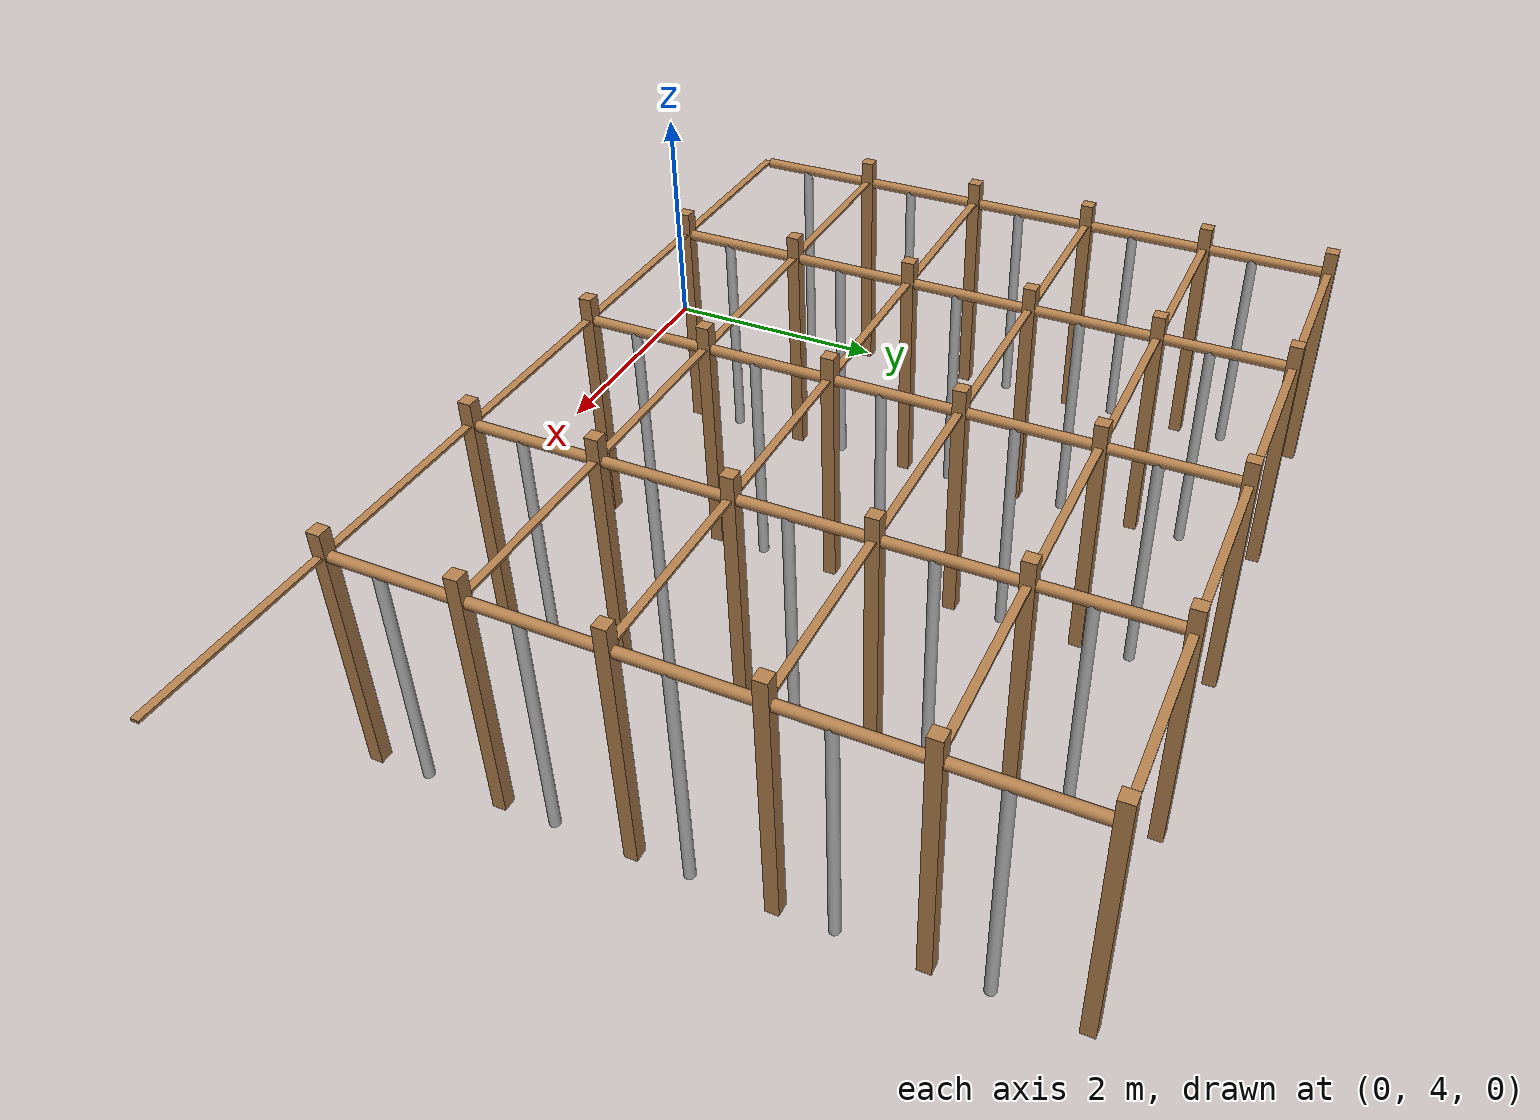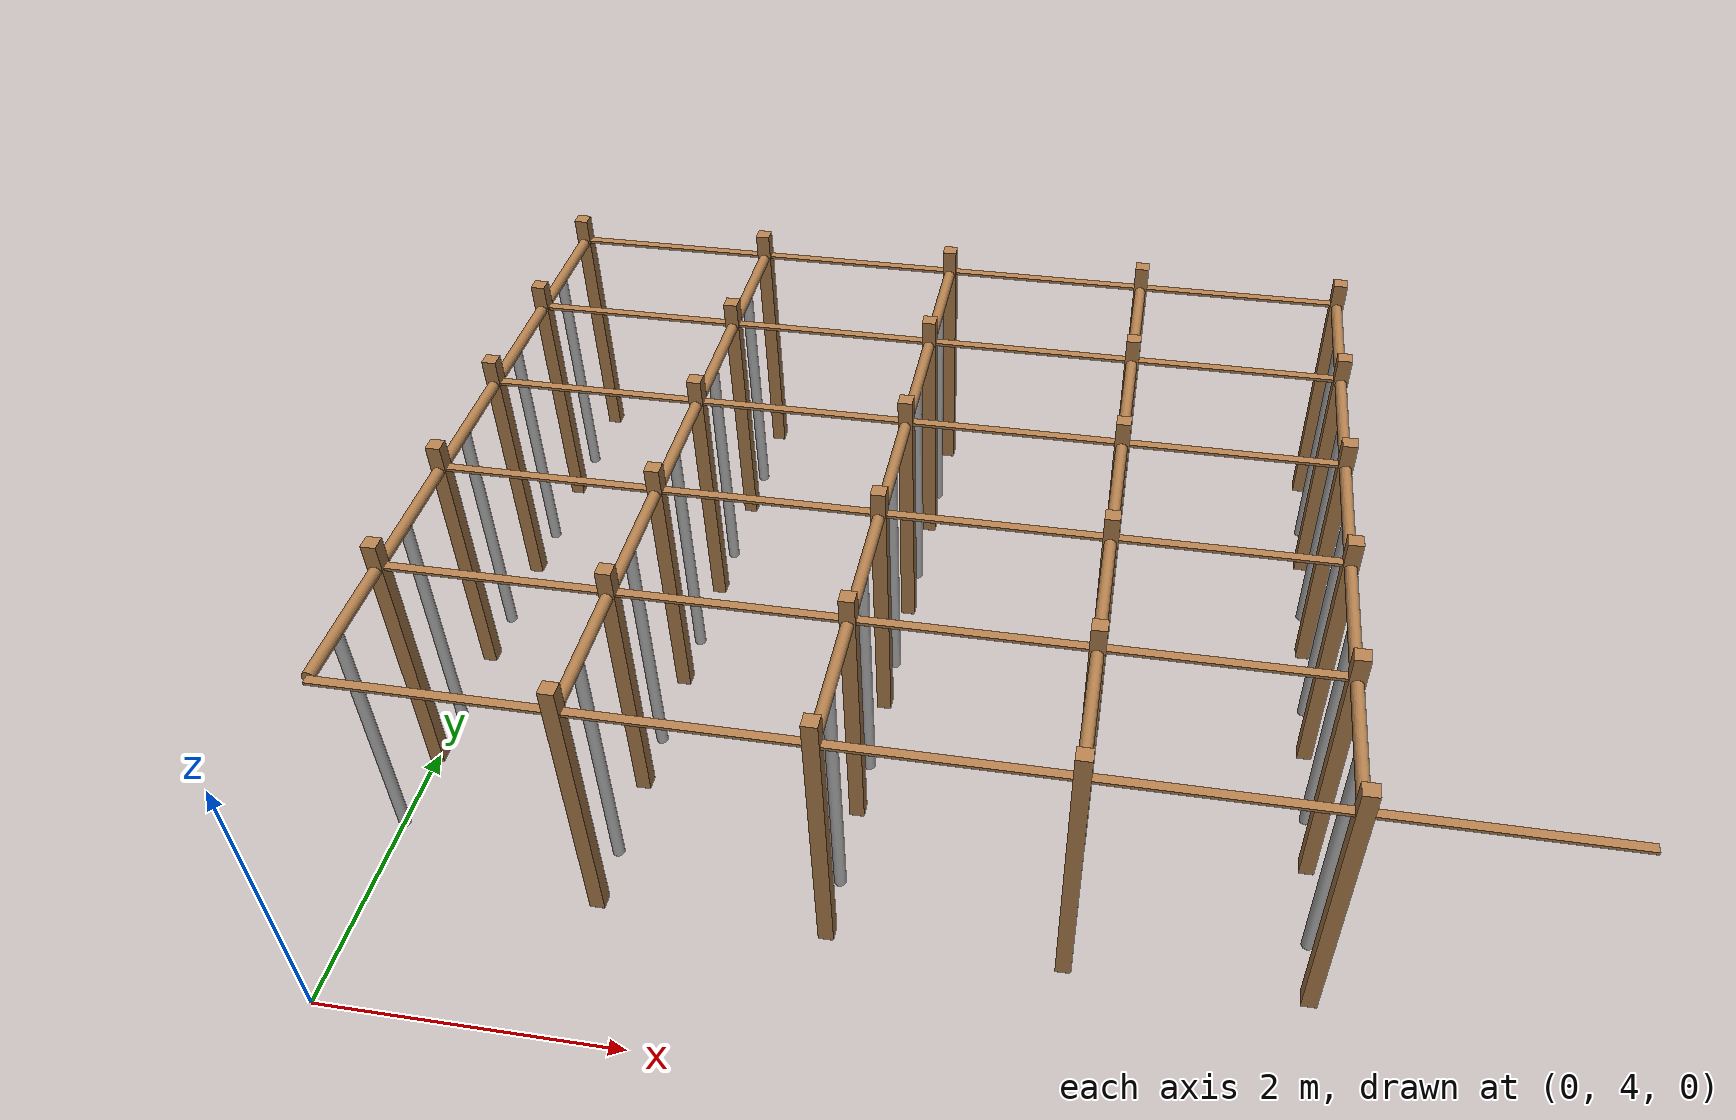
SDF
<sdf version="1.4">
 <model name="pergola">
  <include><name>post_6</name><pose>0.0 6.0 0 0 0 0</pose><uri>model://post</uri></include>
  <include><name>post_7</name><pose>0.0 7.0 0 0 0 0</pose><uri>model://post</uri></include>
  <include><name>post_8</name><pose>0.0 8.0 0 0 0 0</pose><uri>model://post</uri></include>
  <include><name>post_9</name><pose>0.0 9.0 0 0 0 0</pose><uri>model://post</uri></include>
  <include><name>post_10</name><pose>0.0 10.0 0 0 0 0</pose><uri>model://post</uri></include>
  <include><name>post_16</name><pose>1.5 5.0 0 0 0 0</pose><uri>model://post</uri></include>
  <include><name>post_17</name><pose>1.5 6.0 0 0 0 0</pose><uri>model://post</uri></include>
  <include><name>post_18</name><pose>1.5 7.0 0 0 0 0</pose><uri>model://post</uri></include>
  <include><name>post_19</name><pose>1.5 8.0 0 0 0 0</pose><uri>model://post</uri></include>
  <include><name>post_20</name><pose>1.5 9.0 0 0 0 0</pose><uri>model://post</uri></include>
  <include><name>post_21</name><pose>1.5 10.0 0 0 0 0</pose><uri>model://post</uri></include>
  <include><name>post_27</name><pose>3.0 5.0 0 0 0 0</pose><uri>model://post</uri></include>
  <include><name>post_28</name><pose>3.0 6.0 0 0 0 0</pose><uri>model://post</uri></include>
  <include><name>post_29</name><pose>3.0 7.0 0 0 0 0</pose><uri>model://post</uri></include>
  <include><name>post_30</name><pose>3.0 8.0 0 0 0 0</pose><uri>model://post</uri></include>
  <include><name>post_31</name><pose>3.0 9.0 0 0 0 0</pose><uri>model://post</uri></include>
  <include><name>post_32</name><pose>3.0 10.0 0 0 0 0</pose><uri>model://post</uri></include>
  <include><name>post_38</name><pose>4.5 5.0 0 0 0 0</pose><uri>model://post</uri></include>
  <include><name>post_39</name><pose>4.5 6.0 0 0 0 0</pose><uri>model://post</uri></include>
  <include><name>post_40</name><pose>4.5 7.0 0 0 0 0</pose><uri>model://post</uri></include>
  <include><name>post_41</name><pose>4.5 8.0 0 0 0 0</pose><uri>model://post</uri></include>
  <include><name>post_42</name><pose>4.5 9.0 0 0 0 0</pose><uri>model://post</uri></include>
  <include><name>post_43</name><pose>4.5 10.0 0 0 0 0</pose><uri>model://post</uri></include>
  <include><name>post_49</name><pose>6.0 5.0 0 0 0 0</pose><uri>model://post</uri></include>
  <include><name>post_50</name><pose>6.0 6.0 0 0 0 0</pose><uri>model://post</uri></include>
  <include><name>post_51</name><pose>6.0 7.0 0 0 0 0</pose><uri>model://post</uri></include>
  <include><name>post_52</name><pose>6.0 8.0 0 0 0 0</pose><uri>model://post</uri></include>
  <include><name>post_53</name><pose>6.0 9.0 0 0 0 0</pose><uri>model://post</uri></include>
  <include><name>post_54</name><pose>6.0 10.0 0 0 0 0</pose><uri>model://post</uri></include>
  <link name="beam_5">
   <pose>0.75 5.0 1.81 0 0 0</pose>
   <collision name="collision"><geometry><box><size>1.5 0.06 0.02</size></box></geometry></collision>
   <visual name="visual">
    <geometry><box><size>1.5 0.06 0.02</size></box></geometry>
    <material><script><name>Gazebo/Wood</name></script></material>
   </visual>
   <inertial>
    <mass>5</mass>
    <inertia>
     <ixx>0.0016666666666666668</ixx>
     <ixy>0.0</ixy>
     <ixz>0.0</ixz>
     <iyy>0.9390000000000001</iyy>
     <iyz>0.0</iyz>
     <izz>0.9376666666666665</izz>
    </inertia>
   </inertial>
  </link>
  <link name="beam_6">
   <pose>0.75 6.0 1.81 0 0 0</pose>
   <collision name="collision"><geometry><box><size>1.5 0.06 0.02</size></box></geometry></collision>
   <visual name="visual">
    <geometry><box><size>1.5 0.06 0.02</size></box></geometry>
    <material><script><name>Gazebo/Wood</name></script></material>
   </visual>
   <inertial>
    <mass>5</mass>
    <inertia>
     <ixx>0.0016666666666666668</ixx>
     <ixy>0.0</ixy>
     <ixz>0.0</ixz>
     <iyy>0.9390000000000001</iyy>
     <iyz>0.0</iyz>
     <izz>0.9376666666666665</izz>
    </inertia>
   </inertial>
  </link>
  <link name="beam_7">
   <pose>0.75 7.0 1.81 0 0 0</pose>
   <collision name="collision"><geometry><box><size>1.5 0.06 0.02</size></box></geometry></collision>
   <visual name="visual">
    <geometry><box><size>1.5 0.06 0.02</size></box></geometry>
    <material><script><name>Gazebo/Wood</name></script></material>
   </visual>
   <inertial>
    <mass>5</mass>
    <inertia>
     <ixx>0.0016666666666666668</ixx>
     <ixy>0.0</ixy>
     <ixz>0.0</ixz>
     <iyy>0.9390000000000001</iyy>
     <iyz>0.0</iyz>
     <izz>0.9376666666666665</izz>
    </inertia>
   </inertial>
  </link>
  <link name="beam_8">
   <pose>0.75 8.0 1.81 0 0 0</pose>
   <collision name="collision"><geometry><box><size>1.5 0.06 0.02</size></box></geometry></collision>
   <visual name="visual">
    <geometry><box><size>1.5 0.06 0.02</size></box></geometry>
    <material><script><name>Gazebo/Wood</name></script></material>
   </visual>
   <inertial>
    <mass>5</mass>
    <inertia>
     <ixx>0.0016666666666666668</ixx>
     <ixy>0.0</ixy>
     <ixz>0.0</ixz>
     <iyy>0.9390000000000001</iyy>
     <iyz>0.0</iyz>
     <izz>0.9376666666666665</izz>
    </inertia>
   </inertial>
  </link>
  <link name="beam_9">
   <pose>0.75 9.0 1.81 0 0 0</pose>
   <collision name="collision"><geometry><box><size>1.5 0.06 0.02</size></box></geometry></collision>
   <visual name="visual">
    <geometry><box><size>1.5 0.06 0.02</size></box></geometry>
    <material><script><name>Gazebo/Wood</name></script></material>
   </visual>
   <inertial>
    <mass>5</mass>
    <inertia>
     <ixx>0.0016666666666666668</ixx>
     <ixy>0.0</ixy>
     <ixz>0.0</ixz>
     <iyy>0.9390000000000001</iyy>
     <iyz>0.0</iyz>
     <izz>0.9376666666666665</izz>
    </inertia>
   </inertial>
  </link>
  <link name="beam_10">
   <pose>0.75 10.0 1.81 0 0 0</pose>
   <collision name="collision"><geometry><box><size>1.5 0.06 0.02</size></box></geometry></collision>
   <visual name="visual">
    <geometry><box><size>1.5 0.06 0.02</size></box></geometry>
    <material><script><name>Gazebo/Wood</name></script></material>
   </visual>
   <inertial>
    <mass>5</mass>
    <inertia>
     <ixx>0.0016666666666666668</ixx>
     <ixy>0.0</ixy>
     <ixz>0.0</ixz>
     <iyy>0.9390000000000001</iyy>
     <iyz>0.0</iyz>
     <izz>0.9376666666666665</izz>
    </inertia>
   </inertial>
  </link>
  <link name="beam_16">
   <pose>2.25 5.0 1.81 0 0 0</pose>
   <collision name="collision"><geometry><box><size>1.5 0.06 0.02</size></box></geometry></collision>
   <visual name="visual">
    <geometry><box><size>1.5 0.06 0.02</size></box></geometry>
    <material><script><name>Gazebo/Wood</name></script></material>
   </visual>
   <inertial>
    <mass>5</mass>
    <inertia>
     <ixx>0.0016666666666666668</ixx>
     <ixy>0.0</ixy>
     <ixz>0.0</ixz>
     <iyy>0.9390000000000001</iyy>
     <iyz>0.0</iyz>
     <izz>0.9376666666666665</izz>
    </inertia>
   </inertial>
  </link>
  <link name="beam_17">
   <pose>2.25 6.0 1.81 0 0 0</pose>
   <collision name="collision"><geometry><box><size>1.5 0.06 0.02</size></box></geometry></collision>
   <visual name="visual">
    <geometry><box><size>1.5 0.06 0.02</size></box></geometry>
    <material><script><name>Gazebo/Wood</name></script></material>
   </visual>
   <inertial>
    <mass>5</mass>
    <inertia>
     <ixx>0.0016666666666666668</ixx>
     <ixy>0.0</ixy>
     <ixz>0.0</ixz>
     <iyy>0.9390000000000001</iyy>
     <iyz>0.0</iyz>
     <izz>0.9376666666666665</izz>
    </inertia>
   </inertial>
  </link>
  <link name="beam_18">
   <pose>2.25 7.0 1.81 0 0 0</pose>
   <collision name="collision"><geometry><box><size>1.5 0.06 0.02</size></box></geometry></collision>
   <visual name="visual">
    <geometry><box><size>1.5 0.06 0.02</size></box></geometry>
    <material><script><name>Gazebo/Wood</name></script></material>
   </visual>
   <inertial>
    <mass>5</mass>
    <inertia>
     <ixx>0.0016666666666666668</ixx>
     <ixy>0.0</ixy>
     <ixz>0.0</ixz>
     <iyy>0.9390000000000001</iyy>
     <iyz>0.0</iyz>
     <izz>0.9376666666666665</izz>
    </inertia>
   </inertial>
  </link>
  <link name="beam_19">
   <pose>2.25 8.0 1.81 0 0 0</pose>
   <collision name="collision"><geometry><box><size>1.5 0.06 0.02</size></box></geometry></collision>
   <visual name="visual">
    <geometry><box><size>1.5 0.06 0.02</size></box></geometry>
    <material><script><name>Gazebo/Wood</name></script></material>
   </visual>
   <inertial>
    <mass>5</mass>
    <inertia>
     <ixx>0.0016666666666666668</ixx>
     <ixy>0.0</ixy>
     <ixz>0.0</ixz>
     <iyy>0.9390000000000001</iyy>
     <iyz>0.0</iyz>
     <izz>0.9376666666666665</izz>
    </inertia>
   </inertial>
  </link>
  <link name="beam_20">
   <pose>2.25 9.0 1.81 0 0 0</pose>
   <collision name="collision"><geometry><box><size>1.5 0.06 0.02</size></box></geometry></collision>
   <visual name="visual">
    <geometry><box><size>1.5 0.06 0.02</size></box></geometry>
    <material><script><name>Gazebo/Wood</name></script></material>
   </visual>
   <inertial>
    <mass>5</mass>
    <inertia>
     <ixx>0.0016666666666666668</ixx>
     <ixy>0.0</ixy>
     <ixz>0.0</ixz>
     <iyy>0.9390000000000001</iyy>
     <iyz>0.0</iyz>
     <izz>0.9376666666666665</izz>
    </inertia>
   </inertial>
  </link>
  <link name="beam_21">
   <pose>2.25 10.0 1.81 0 0 0</pose>
   <collision name="collision"><geometry><box><size>1.5 0.06 0.02</size></box></geometry></collision>
   <visual name="visual">
    <geometry><box><size>1.5 0.06 0.02</size></box></geometry>
    <material><script><name>Gazebo/Wood</name></script></material>
   </visual>
   <inertial>
    <mass>5</mass>
    <inertia>
     <ixx>0.0016666666666666668</ixx>
     <ixy>0.0</ixy>
     <ixz>0.0</ixz>
     <iyy>0.9390000000000001</iyy>
     <iyz>0.0</iyz>
     <izz>0.9376666666666665</izz>
    </inertia>
   </inertial>
  </link>
  <link name="beam_27">
   <pose>3.75 5.0 1.81 0 0 0</pose>
   <collision name="collision"><geometry><box><size>1.5 0.06 0.02</size></box></geometry></collision>
   <visual name="visual">
    <geometry><box><size>1.5 0.06 0.02</size></box></geometry>
    <material><script><name>Gazebo/Wood</name></script></material>
   </visual>
   <inertial>
    <mass>5</mass>
    <inertia>
     <ixx>0.0016666666666666668</ixx>
     <ixy>0.0</ixy>
     <ixz>0.0</ixz>
     <iyy>0.9390000000000001</iyy>
     <iyz>0.0</iyz>
     <izz>0.9376666666666665</izz>
    </inertia>
   </inertial>
  </link>
  <link name="beam_28">
   <pose>3.75 6.0 1.81 0 0 0</pose>
   <collision name="collision"><geometry><box><size>1.5 0.06 0.02</size></box></geometry></collision>
   <visual name="visual">
    <geometry><box><size>1.5 0.06 0.02</size></box></geometry>
    <material><script><name>Gazebo/Wood</name></script></material>
   </visual>
   <inertial>
    <mass>5</mass>
    <inertia>
     <ixx>0.0016666666666666668</ixx>
     <ixy>0.0</ixy>
     <ixz>0.0</ixz>
     <iyy>0.9390000000000001</iyy>
     <iyz>0.0</iyz>
     <izz>0.9376666666666665</izz>
    </inertia>
   </inertial>
  </link>
  <link name="beam_29">
   <pose>3.75 7.0 1.81 0 0 0</pose>
   <collision name="collision"><geometry><box><size>1.5 0.06 0.02</size></box></geometry></collision>
   <visual name="visual">
    <geometry><box><size>1.5 0.06 0.02</size></box></geometry>
    <material><script><name>Gazebo/Wood</name></script></material>
   </visual>
   <inertial>
    <mass>5</mass>
    <inertia>
     <ixx>0.0016666666666666668</ixx>
     <ixy>0.0</ixy>
     <ixz>0.0</ixz>
     <iyy>0.9390000000000001</iyy>
     <iyz>0.0</iyz>
     <izz>0.9376666666666665</izz>
    </inertia>
   </inertial>
  </link>
  <link name="beam_30">
   <pose>3.75 8.0 1.81 0 0 0</pose>
   <collision name="collision"><geometry><box><size>1.5 0.06 0.02</size></box></geometry></collision>
   <visual name="visual">
    <geometry><box><size>1.5 0.06 0.02</size></box></geometry>
    <material><script><name>Gazebo/Wood</name></script></material>
   </visual>
   <inertial>
    <mass>5</mass>
    <inertia>
     <ixx>0.0016666666666666668</ixx>
     <ixy>0.0</ixy>
     <ixz>0.0</ixz>
     <iyy>0.9390000000000001</iyy>
     <iyz>0.0</iyz>
     <izz>0.9376666666666665</izz>
    </inertia>
   </inertial>
  </link>
  <link name="beam_31">
   <pose>3.75 9.0 1.81 0 0 0</pose>
   <collision name="collision"><geometry><box><size>1.5 0.06 0.02</size></box></geometry></collision>
   <visual name="visual">
    <geometry><box><size>1.5 0.06 0.02</size></box></geometry>
    <material><script><name>Gazebo/Wood</name></script></material>
   </visual>
   <inertial>
    <mass>5</mass>
    <inertia>
     <ixx>0.0016666666666666668</ixx>
     <ixy>0.0</ixy>
     <ixz>0.0</ixz>
     <iyy>0.9390000000000001</iyy>
     <iyz>0.0</iyz>
     <izz>0.9376666666666665</izz>
    </inertia>
   </inertial>
  </link>
  <link name="beam_32">
   <pose>3.75 10.0 1.81 0 0 0</pose>
   <collision name="collision"><geometry><box><size>1.5 0.06 0.02</size></box></geometry></collision>
   <visual name="visual">
    <geometry><box><size>1.5 0.06 0.02</size></box></geometry>
    <material><script><name>Gazebo/Wood</name></script></material>
   </visual>
   <inertial>
    <mass>5</mass>
    <inertia>
     <ixx>0.0016666666666666668</ixx>
     <ixy>0.0</ixy>
     <ixz>0.0</ixz>
     <iyy>0.9390000000000001</iyy>
     <iyz>0.0</iyz>
     <izz>0.9376666666666665</izz>
    </inertia>
   </inertial>
  </link>
  <link name="beam_38">
   <pose>5.25 5.0 1.81 0 0 0</pose>
   <collision name="collision"><geometry><box><size>1.5 0.06 0.02</size></box></geometry></collision>
   <visual name="visual">
    <geometry><box><size>1.5 0.06 0.02</size></box></geometry>
    <material><script><name>Gazebo/Wood</name></script></material>
   </visual>
   <inertial>
    <mass>5</mass>
    <inertia>
     <ixx>0.0016666666666666668</ixx>
     <ixy>0.0</ixy>
     <ixz>0.0</ixz>
     <iyy>0.9390000000000001</iyy>
     <iyz>0.0</iyz>
     <izz>0.9376666666666665</izz>
    </inertia>
   </inertial>
  </link>
  <link name="beam_39">
   <pose>5.25 6.0 1.81 0 0 0</pose>
   <collision name="collision"><geometry><box><size>1.5 0.06 0.02</size></box></geometry></collision>
   <visual name="visual">
    <geometry><box><size>1.5 0.06 0.02</size></box></geometry>
    <material><script><name>Gazebo/Wood</name></script></material>
   </visual>
   <inertial>
    <mass>5</mass>
    <inertia>
     <ixx>0.0016666666666666668</ixx>
     <ixy>0.0</ixy>
     <ixz>0.0</ixz>
     <iyy>0.9390000000000001</iyy>
     <iyz>0.0</iyz>
     <izz>0.9376666666666665</izz>
    </inertia>
   </inertial>
  </link>
  <link name="beam_40">
   <pose>5.25 7.0 1.81 0 0 0</pose>
   <collision name="collision"><geometry><box><size>1.5 0.06 0.02</size></box></geometry></collision>
   <visual name="visual">
    <geometry><box><size>1.5 0.06 0.02</size></box></geometry>
    <material><script><name>Gazebo/Wood</name></script></material>
   </visual>
   <inertial>
    <mass>5</mass>
    <inertia>
     <ixx>0.0016666666666666668</ixx>
     <ixy>0.0</ixy>
     <ixz>0.0</ixz>
     <iyy>0.9390000000000001</iyy>
     <iyz>0.0</iyz>
     <izz>0.9376666666666665</izz>
    </inertia>
   </inertial>
  </link>
  <link name="beam_41">
   <pose>5.25 8.0 1.81 0 0 0</pose>
   <collision name="collision"><geometry><box><size>1.5 0.06 0.02</size></box></geometry></collision>
   <visual name="visual">
    <geometry><box><size>1.5 0.06 0.02</size></box></geometry>
    <material><script><name>Gazebo/Wood</name></script></material>
   </visual>
   <inertial>
    <mass>5</mass>
    <inertia>
     <ixx>0.0016666666666666668</ixx>
     <ixy>0.0</ixy>
     <ixz>0.0</ixz>
     <iyy>0.9390000000000001</iyy>
     <iyz>0.0</iyz>
     <izz>0.9376666666666665</izz>
    </inertia>
   </inertial>
  </link>
  <link name="beam_42">
   <pose>5.25 9.0 1.81 0 0 0</pose>
   <collision name="collision"><geometry><box><size>1.5 0.06 0.02</size></box></geometry></collision>
   <visual name="visual">
    <geometry><box><size>1.5 0.06 0.02</size></box></geometry>
    <material><script><name>Gazebo/Wood</name></script></material>
   </visual>
   <inertial>
    <mass>5</mass>
    <inertia>
     <ixx>0.0016666666666666668</ixx>
     <ixy>0.0</ixy>
     <ixz>0.0</ixz>
     <iyy>0.9390000000000001</iyy>
     <iyz>0.0</iyz>
     <izz>0.9376666666666665</izz>
    </inertia>
   </inertial>
  </link>
  <link name="beam_43">
   <pose>5.25 10.0 1.81 0 0 0</pose>
   <collision name="collision"><geometry><box><size>1.5 0.06 0.02</size></box></geometry></collision>
   <visual name="visual">
    <geometry><box><size>1.5 0.06 0.02</size></box></geometry>
    <material><script><name>Gazebo/Wood</name></script></material>
   </visual>
   <inertial>
    <mass>5</mass>
    <inertia>
     <ixx>0.0016666666666666668</ixx>
     <ixy>0.0</ixy>
     <ixz>0.0</ixz>
     <iyy>0.9390000000000001</iyy>
     <iyz>0.0</iyz>
     <izz>0.9376666666666665</izz>
    </inertia>
   </inertial>
  </link>
  <link name="beam_49">
   <pose>6.75 5.0 1.81 0 0 0</pose>
   <collision name="collision"><geometry><box><size>1.5 0.06 0.02</size></box></geometry></collision>
   <visual name="visual">
    <geometry><box><size>1.5 0.06 0.02</size></box></geometry>
    <material><script><name>Gazebo/Wood</name></script></material>
   </visual>
   <inertial>
    <mass>5</mass>
    <inertia>
     <ixx>0.0016666666666666668</ixx>
     <ixy>0.0</ixy>
     <ixz>0.0</ixz>
     <iyy>0.9390000000000001</iyy>
     <iyz>0.0</iyz>
     <izz>0.9376666666666665</izz>
    </inertia>
   </inertial>
  </link>
  <include><name>tree_5</name><pose>0.0 5.4 0 0 0 0</pose><uri>model://tree_trunk</uri></include>
  <include><name>tree_6</name><pose>0.0 6.4 0 0 0 0</pose><uri>model://tree_trunk</uri></include>
  <include><name>tree_7</name><pose>0.0 7.4 0 0 0 0</pose><uri>model://tree_trunk</uri></include>
  <include><name>tree_8</name><pose>0.0 8.4 0 0 0 0</pose><uri>model://tree_trunk</uri></include>
  <include><name>tree_9</name><pose>0.0 9.4 0 0 0 0</pose><uri>model://tree_trunk</uri></include>
  <include><name>tree_15</name><pose>1.5 5.4 0 0 0 0</pose><uri>model://tree_trunk</uri></include>
  <include><name>tree_16</name><pose>1.5 6.4 0 0 0 0</pose><uri>model://tree_trunk</uri></include>
  <include><name>tree_17</name><pose>1.5 7.4 0 0 0 0</pose><uri>model://tree_trunk</uri></include>
  <include><name>tree_18</name><pose>1.5 8.4 0 0 0 0</pose><uri>model://tree_trunk</uri></include>
  <include><name>tree_19</name><pose>1.5 9.4 0 0 0 0</pose><uri>model://tree_trunk</uri></include>
  <include><name>tree_25</name><pose>3.0 5.4 0 0 0 0</pose><uri>model://tree_trunk</uri></include>
  <include><name>tree_26</name><pose>3.0 6.4 0 0 0 0</pose><uri>model://tree_trunk</uri></include>
  <include><name>tree_27</name><pose>3.0 7.4 0 0 0 0</pose><uri>model://tree_trunk</uri></include>
  <include><name>tree_28</name><pose>3.0 8.4 0 0 0 0</pose><uri>model://tree_trunk</uri></include>
  <include><name>tree_29</name><pose>3.0 9.4 0 0 0 0</pose><uri>model://tree_trunk</uri></include>
  <include><name>tree_35</name><pose>4.5 5.4 0 0 0 0</pose><uri>model://tree_trunk</uri></include>
  <include><name>tree_36</name><pose>4.5 6.4 0 0 0 0</pose><uri>model://tree_trunk</uri></include>
  <include><name>tree_37</name><pose>4.5 7.4 0 0 0 0</pose><uri>model://tree_trunk</uri></include>
  <include><name>tree_38</name><pose>4.5 8.4 0 0 0 0</pose><uri>model://tree_trunk</uri></include>
  <include><name>tree_39</name><pose>4.5 9.4 0 0 0 0</pose><uri>model://tree_trunk</uri></include>
  <include><name>tree_45</name><pose>6.0 5.4 0 0 0 0</pose><uri>model://tree_trunk</uri></include>
  <include><name>tree_46</name><pose>6.0 6.4 0 0 0 0</pose><uri>model://tree_trunk</uri></include>
  <include><name>tree_47</name><pose>6.0 7.4 0 0 0 0</pose><uri>model://tree_trunk</uri></include>
  <include><name>tree_48</name><pose>6.0 8.4 0 0 0 0</pose><uri>model://tree_trunk</uri></include>
  <include><name>tree_49</name><pose>6.0 9.4 0 0 0 0</pose><uri>model://tree_trunk</uri></include>
  <link name="baseBranch_5">
   <pose>0.0 5.5 1.8 1.5707963267948966 0 0</pose>
   <collision name="collision">
    <geometry><cylinder><radius>0.04</radius><length>0.94</length></cylinder></geometry>
   </collision>
   <visual name="visual">
    <geometry><cylinder><radius>0.04</radius><length>0.94</length></cylinder></geometry>
    <material><script><name>Gazebo/WoodFloor</name></script></material>
   </visual>
   <inertial>
    <mass>10</mass>
    <inertia>
     <ixx>0.7403333333333334</ixx>
     <ixy>0.0</ixy>
     <ixz>0.0</ixz>
     <iyy>0.7403333333333334</iyy>
     <iyz>0.0</iyz>
     <izz>0.008</izz>
    </inertia>
   </inertial>
  </link>
  <link name="baseBranch_6">
   <pose>0.0 6.5 1.8 1.5707963267948966 0 0</pose>
   <collision name="collision">
    <geometry><cylinder><radius>0.04</radius><length>0.94</length></cylinder></geometry>
   </collision>
   <visual name="visual">
    <geometry><cylinder><radius>0.04</radius><length>0.94</length></cylinder></geometry>
    <material><script><name>Gazebo/WoodFloor</name></script></material>
   </visual>
   <inertial>
    <mass>10</mass>
    <inertia>
     <ixx>0.7403333333333334</ixx>
     <ixy>0.0</ixy>
     <ixz>0.0</ixz>
     <iyy>0.7403333333333334</iyy>
     <iyz>0.0</iyz>
     <izz>0.008</izz>
    </inertia>
   </inertial>
  </link>
  <link name="baseBranch_7">
   <pose>0.0 7.5 1.8 1.5707963267948966 0 0</pose>
   <collision name="collision">
    <geometry><cylinder><radius>0.04</radius><length>0.94</length></cylinder></geometry>
   </collision>
   <visual name="visual">
    <geometry><cylinder><radius>0.04</radius><length>0.94</length></cylinder></geometry>
    <material><script><name>Gazebo/WoodFloor</name></script></material>
   </visual>
   <inertial>
    <mass>10</mass>
    <inertia>
     <ixx>0.7403333333333334</ixx>
     <ixy>0.0</ixy>
     <ixz>0.0</ixz>
     <iyy>0.7403333333333334</iyy>
     <iyz>0.0</iyz>
     <izz>0.008</izz>
    </inertia>
   </inertial>
  </link>
  <link name="baseBranch_8">
   <pose>0.0 8.5 1.8 1.5707963267948966 0 0</pose>
   <collision name="collision">
    <geometry><cylinder><radius>0.04</radius><length>0.94</length></cylinder></geometry>
   </collision>
   <visual name="visual">
    <geometry><cylinder><radius>0.04</radius><length>0.94</length></cylinder></geometry>
    <material><script><name>Gazebo/WoodFloor</name></script></material>
   </visual>
   <inertial>
    <mass>10</mass>
    <inertia>
     <ixx>0.7403333333333334</ixx>
     <ixy>0.0</ixy>
     <ixz>0.0</ixz>
     <iyy>0.7403333333333334</iyy>
     <iyz>0.0</iyz>
     <izz>0.008</izz>
    </inertia>
   </inertial>
  </link>
  <link name="baseBranch_9">
   <pose>0.0 9.5 1.8 1.5707963267948966 0 0</pose>
   <collision name="collision">
    <geometry><cylinder><radius>0.04</radius><length>0.94</length></cylinder></geometry>
   </collision>
   <visual name="visual">
    <geometry><cylinder><radius>0.04</radius><length>0.94</length></cylinder></geometry>
    <material><script><name>Gazebo/WoodFloor</name></script></material>
   </visual>
   <inertial>
    <mass>10</mass>
    <inertia>
     <ixx>0.7403333333333334</ixx>
     <ixy>0.0</ixy>
     <ixz>0.0</ixz>
     <iyy>0.7403333333333334</iyy>
     <iyz>0.0</iyz>
     <izz>0.008</izz>
    </inertia>
   </inertial>
  </link>
  <link name="baseBranch_15">
   <pose>1.5 5.5 1.8 1.5707963267948966 0 0</pose>
   <collision name="collision">
    <geometry><cylinder><radius>0.04</radius><length>0.94</length></cylinder></geometry>
   </collision>
   <visual name="visual">
    <geometry><cylinder><radius>0.04</radius><length>0.94</length></cylinder></geometry>
    <material><script><name>Gazebo/WoodFloor</name></script></material>
   </visual>
   <inertial>
    <mass>10</mass>
    <inertia>
     <ixx>0.7403333333333334</ixx>
     <ixy>0.0</ixy>
     <ixz>0.0</ixz>
     <iyy>0.7403333333333334</iyy>
     <iyz>0.0</iyz>
     <izz>0.008</izz>
    </inertia>
   </inertial>
  </link>
  <link name="baseBranch_16">
   <pose>1.5 6.5 1.8 1.5707963267948966 0 0</pose>
   <collision name="collision">
    <geometry><cylinder><radius>0.04</radius><length>0.94</length></cylinder></geometry>
   </collision>
   <visual name="visual">
    <geometry><cylinder><radius>0.04</radius><length>0.94</length></cylinder></geometry>
    <material><script><name>Gazebo/WoodFloor</name></script></material>
   </visual>
   <inertial>
    <mass>10</mass>
    <inertia>
     <ixx>0.7403333333333334</ixx>
     <ixy>0.0</ixy>
     <ixz>0.0</ixz>
     <iyy>0.7403333333333334</iyy>
     <iyz>0.0</iyz>
     <izz>0.008</izz>
    </inertia>
   </inertial>
  </link>
  <link name="baseBranch_17">
   <pose>1.5 7.5 1.8 1.5707963267948966 0 0</pose>
   <collision name="collision">
    <geometry><cylinder><radius>0.04</radius><length>0.94</length></cylinder></geometry>
   </collision>
   <visual name="visual">
    <geometry><cylinder><radius>0.04</radius><length>0.94</length></cylinder></geometry>
    <material><script><name>Gazebo/WoodFloor</name></script></material>
   </visual>
   <inertial>
    <mass>10</mass>
    <inertia>
     <ixx>0.7403333333333334</ixx>
     <ixy>0.0</ixy>
     <ixz>0.0</ixz>
     <iyy>0.7403333333333334</iyy>
     <iyz>0.0</iyz>
     <izz>0.008</izz>
    </inertia>
   </inertial>
  </link>
  <link name="baseBranch_18">
   <pose>1.5 8.5 1.8 1.5707963267948966 0 0</pose>
   <collision name="collision">
    <geometry><cylinder><radius>0.04</radius><length>0.94</length></cylinder></geometry>
   </collision>
   <visual name="visual">
    <geometry><cylinder><radius>0.04</radius><length>0.94</length></cylinder></geometry>
    <material><script><name>Gazebo/WoodFloor</name></script></material>
   </visual>
   <inertial>
    <mass>10</mass>
    <inertia>
     <ixx>0.7403333333333334</ixx>
     <ixy>0.0</ixy>
     <ixz>0.0</ixz>
     <iyy>0.7403333333333334</iyy>
     <iyz>0.0</iyz>
     <izz>0.008</izz>
    </inertia>
   </inertial>
  </link>
  <link name="baseBranch_19">
   <pose>1.5 9.5 1.8 1.5707963267948966 0 0</pose>
   <collision name="collision">
    <geometry><cylinder><radius>0.04</radius><length>0.94</length></cylinder></geometry>
   </collision>
   <visual name="visual">
    <geometry><cylinder><radius>0.04</radius><length>0.94</length></cylinder></geometry>
    <material><script><name>Gazebo/WoodFloor</name></script></material>
   </visual>
   <inertial>
    <mass>10</mass>
    <inertia>
     <ixx>0.7403333333333334</ixx>
     <ixy>0.0</ixy>
     <ixz>0.0</ixz>
     <iyy>0.7403333333333334</iyy>
     <iyz>0.0</iyz>
     <izz>0.008</izz>
    </inertia>
   </inertial>
  </link>
  <link name="baseBranch_25">
   <pose>3.0 5.5 1.8 1.5707963267948966 0 0</pose>
   <collision name="collision">
    <geometry><cylinder><radius>0.04</radius><length>0.94</length></cylinder></geometry>
   </collision>
   <visual name="visual">
    <geometry><cylinder><radius>0.04</radius><length>0.94</length></cylinder></geometry>
    <material><script><name>Gazebo/WoodFloor</name></script></material>
   </visual>
   <inertial>
    <mass>10</mass>
    <inertia>
     <ixx>0.7403333333333334</ixx>
     <ixy>0.0</ixy>
     <ixz>0.0</ixz>
     <iyy>0.7403333333333334</iyy>
     <iyz>0.0</iyz>
     <izz>0.008</izz>
    </inertia>
   </inertial>
  </link>
  <link name="baseBranch_26">
   <pose>3.0 6.5 1.8 1.5707963267948966 0 0</pose>
   <collision name="collision">
    <geometry><cylinder><radius>0.04</radius><length>0.94</length></cylinder></geometry>
   </collision>
   <visual name="visual">
    <geometry><cylinder><radius>0.04</radius><length>0.94</length></cylinder></geometry>
    <material><script><name>Gazebo/WoodFloor</name></script></material>
   </visual>
   <inertial>
    <mass>10</mass>
    <inertia>
     <ixx>0.7403333333333334</ixx>
     <ixy>0.0</ixy>
     <ixz>0.0</ixz>
     <iyy>0.7403333333333334</iyy>
     <iyz>0.0</iyz>
     <izz>0.008</izz>
    </inertia>
   </inertial>
  </link>
  <link name="baseBranch_27">
   <pose>3.0 7.5 1.8 1.5707963267948966 0 0</pose>
   <collision name="collision">
    <geometry><cylinder><radius>0.04</radius><length>0.94</length></cylinder></geometry>
   </collision>
   <visual name="visual">
    <geometry><cylinder><radius>0.04</radius><length>0.94</length></cylinder></geometry>
    <material><script><name>Gazebo/WoodFloor</name></script></material>
   </visual>
   <inertial>
    <mass>10</mass>
    <inertia>
     <ixx>0.7403333333333334</ixx>
     <ixy>0.0</ixy>
     <ixz>0.0</ixz>
     <iyy>0.7403333333333334</iyy>
     <iyz>0.0</iyz>
     <izz>0.008</izz>
    </inertia>
   </inertial>
  </link>
  <link name="baseBranch_28">
   <pose>3.0 8.5 1.8 1.5707963267948966 0 0</pose>
   <collision name="collision">
    <geometry><cylinder><radius>0.04</radius><length>0.94</length></cylinder></geometry>
   </collision>
   <visual name="visual">
    <geometry><cylinder><radius>0.04</radius><length>0.94</length></cylinder></geometry>
    <material><script><name>Gazebo/WoodFloor</name></script></material>
   </visual>
   <inertial>
    <mass>10</mass>
    <inertia>
     <ixx>0.7403333333333334</ixx>
     <ixy>0.0</ixy>
     <ixz>0.0</ixz>
     <iyy>0.7403333333333334</iyy>
     <iyz>0.0</iyz>
     <izz>0.008</izz>
    </inertia>
   </inertial>
  </link>
  <link name="baseBranch_29">
   <pose>3.0 9.5 1.8 1.5707963267948966 0 0</pose>
   <collision name="collision">
    <geometry><cylinder><radius>0.04</radius><length>0.94</length></cylinder></geometry>
   </collision>
   <visual name="visual">
    <geometry><cylinder><radius>0.04</radius><length>0.94</length></cylinder></geometry>
    <material><script><name>Gazebo/WoodFloor</name></script></material>
   </visual>
   <inertial>
    <mass>10</mass>
    <inertia>
     <ixx>0.7403333333333334</ixx>
     <ixy>0.0</ixy>
     <ixz>0.0</ixz>
     <iyy>0.7403333333333334</iyy>
     <iyz>0.0</iyz>
     <izz>0.008</izz>
    </inertia>
   </inertial>
  </link>
  <link name="baseBranch_35">
   <pose>4.5 5.5 1.8 1.5707963267948966 0 0</pose>
   <collision name="collision">
    <geometry><cylinder><radius>0.04</radius><length>0.94</length></cylinder></geometry>
   </collision>
   <visual name="visual">
    <geometry><cylinder><radius>0.04</radius><length>0.94</length></cylinder></geometry>
    <material><script><name>Gazebo/WoodFloor</name></script></material>
   </visual>
   <inertial>
    <mass>10</mass>
    <inertia>
     <ixx>0.7403333333333334</ixx>
     <ixy>0.0</ixy>
     <ixz>0.0</ixz>
     <iyy>0.7403333333333334</iyy>
     <iyz>0.0</iyz>
     <izz>0.008</izz>
    </inertia>
   </inertial>
  </link>
  <link name="baseBranch_36">
   <pose>4.5 6.5 1.8 1.5707963267948966 0 0</pose>
   <collision name="collision">
    <geometry><cylinder><radius>0.04</radius><length>0.94</length></cylinder></geometry>
   </collision>
   <visual name="visual">
    <geometry><cylinder><radius>0.04</radius><length>0.94</length></cylinder></geometry>
    <material><script><name>Gazebo/WoodFloor</name></script></material>
   </visual>
   <inertial>
    <mass>10</mass>
    <inertia>
     <ixx>0.7403333333333334</ixx>
     <ixy>0.0</ixy>
     <ixz>0.0</ixz>
     <iyy>0.7403333333333334</iyy>
     <iyz>0.0</iyz>
     <izz>0.008</izz>
    </inertia>
   </inertial>
  </link>
  <link name="baseBranch_37">
   <pose>4.5 7.5 1.8 1.5707963267948966 0 0</pose>
   <collision name="collision">
    <geometry><cylinder><radius>0.04</radius><length>0.94</length></cylinder></geometry>
   </collision>
   <visual name="visual">
    <geometry><cylinder><radius>0.04</radius><length>0.94</length></cylinder></geometry>
    <material><script><name>Gazebo/WoodFloor</name></script></material>
   </visual>
   <inertial>
    <mass>10</mass>
    <inertia>
     <ixx>0.7403333333333334</ixx>
     <ixy>0.0</ixy>
     <ixz>0.0</ixz>
     <iyy>0.7403333333333334</iyy>
     <iyz>0.0</iyz>
     <izz>0.008</izz>
    </inertia>
   </inertial>
  </link>
  <link name="baseBranch_38">
   <pose>4.5 8.5 1.8 1.5707963267948966 0 0</pose>
   <collision name="collision">
    <geometry><cylinder><radius>0.04</radius><length>0.94</length></cylinder></geometry>
   </collision>
   <visual name="visual">
    <geometry><cylinder><radius>0.04</radius><length>0.94</length></cylinder></geometry>
    <material><script><name>Gazebo/WoodFloor</name></script></material>
   </visual>
   <inertial>
    <mass>10</mass>
    <inertia>
     <ixx>0.7403333333333334</ixx>
     <ixy>0.0</ixy>
     <ixz>0.0</ixz>
     <iyy>0.7403333333333334</iyy>
     <iyz>0.0</iyz>
     <izz>0.008</izz>
    </inertia>
   </inertial>
  </link>
  <link name="baseBranch_39">
   <pose>4.5 9.5 1.8 1.5707963267948966 0 0</pose>
   <collision name="collision">
    <geometry><cylinder><radius>0.04</radius><length>0.94</length></cylinder></geometry>
   </collision>
   <visual name="visual">
    <geometry><cylinder><radius>0.04</radius><length>0.94</length></cylinder></geometry>
    <material><script><name>Gazebo/WoodFloor</name></script></material>
   </visual>
   <inertial>
    <mass>10</mass>
    <inertia>
     <ixx>0.7403333333333334</ixx>
     <ixy>0.0</ixy>
     <ixz>0.0</ixz>
     <iyy>0.7403333333333334</iyy>
     <iyz>0.0</iyz>
     <izz>0.008</izz>
    </inertia>
   </inertial>
  </link>
  <link name="baseBranch_45">
   <pose>6.0 5.5 1.8 1.5707963267948966 0 0</pose>
   <collision name="collision">
    <geometry><cylinder><radius>0.04</radius><length>0.94</length></cylinder></geometry>
   </collision>
   <visual name="visual">
    <geometry><cylinder><radius>0.04</radius><length>0.94</length></cylinder></geometry>
    <material><script><name>Gazebo/WoodFloor</name></script></material>
   </visual>
   <inertial>
    <mass>10</mass>
    <inertia>
     <ixx>0.7403333333333334</ixx>
     <ixy>0.0</ixy>
     <ixz>0.0</ixz>
     <iyy>0.7403333333333334</iyy>
     <iyz>0.0</iyz>
     <izz>0.008</izz>
    </inertia>
   </inertial>
  </link>
  <link name="baseBranch_46">
   <pose>6.0 6.5 1.8 1.5707963267948966 0 0</pose>
   <collision name="collision">
    <geometry><cylinder><radius>0.04</radius><length>0.94</length></cylinder></geometry>
   </collision>
   <visual name="visual">
    <geometry><cylinder><radius>0.04</radius><length>0.94</length></cylinder></geometry>
    <material><script><name>Gazebo/WoodFloor</name></script></material>
   </visual>
   <inertial>
    <mass>10</mass>
    <inertia>
     <ixx>0.7403333333333334</ixx>
     <ixy>0.0</ixy>
     <ixz>0.0</ixz>
     <iyy>0.7403333333333334</iyy>
     <iyz>0.0</iyz>
     <izz>0.008</izz>
    </inertia>
   </inertial>
  </link>
  <link name="baseBranch_47">
   <pose>6.0 7.5 1.8 1.5707963267948966 0 0</pose>
   <collision name="collision">
    <geometry><cylinder><radius>0.04</radius><length>0.94</length></cylinder></geometry>
   </collision>
   <visual name="visual">
    <geometry><cylinder><radius>0.04</radius><length>0.94</length></cylinder></geometry>
    <material><script><name>Gazebo/WoodFloor</name></script></material>
   </visual>
   <inertial>
    <mass>10</mass>
    <inertia>
     <ixx>0.7403333333333334</ixx>
     <ixy>0.0</ixy>
     <ixz>0.0</ixz>
     <iyy>0.7403333333333334</iyy>
     <iyz>0.0</iyz>
     <izz>0.008</izz>
    </inertia>
   </inertial>
  </link>
  <link name="baseBranch_48">
   <pose>6.0 8.5 1.8 1.5707963267948966 0 0</pose>
   <collision name="collision">
    <geometry><cylinder><radius>0.04</radius><length>0.94</length></cylinder></geometry>
   </collision>
   <visual name="visual">
    <geometry><cylinder><radius>0.04</radius><length>0.94</length></cylinder></geometry>
    <material><script><name>Gazebo/WoodFloor</name></script></material>
   </visual>
   <inertial>
    <mass>10</mass>
    <inertia>
     <ixx>0.7403333333333334</ixx>
     <ixy>0.0</ixy>
     <ixz>0.0</ixz>
     <iyy>0.7403333333333334</iyy>
     <iyz>0.0</iyz>
     <izz>0.008</izz>
    </inertia>
   </inertial>
  </link>
  <link name="baseBranch_49">
   <pose>6.0 9.5 1.8 1.5707963267948966 0 0</pose>
   <collision name="collision">
    <geometry><cylinder><radius>0.04</radius><length>0.94</length></cylinder></geometry>
   </collision>
   <visual name="visual">
    <geometry><cylinder><radius>0.04</radius><length>0.94</length></cylinder></geometry>
    <material><script><name>Gazebo/WoodFloor</name></script></material>
   </visual>
   <inertial>
    <mass>10</mass>
    <inertia>
     <ixx>0.7403333333333334</ixx>
     <ixy>0.0</ixy>
     <ixz>0.0</ixz>
     <iyy>0.7403333333333334</iyy>
     <iyz>0.0</iyz>
     <izz>0.008</izz>
    </inertia>
   </inertial>
  </link>
 </model>
</sdf>
